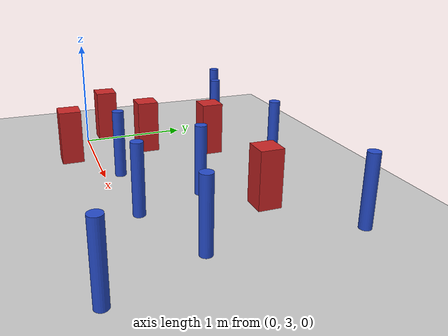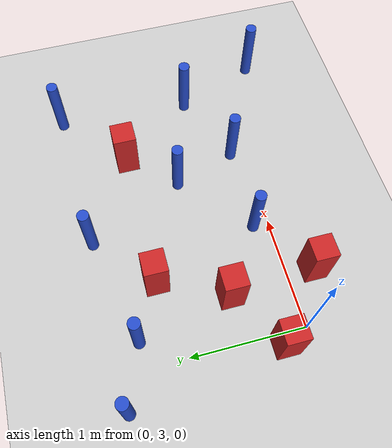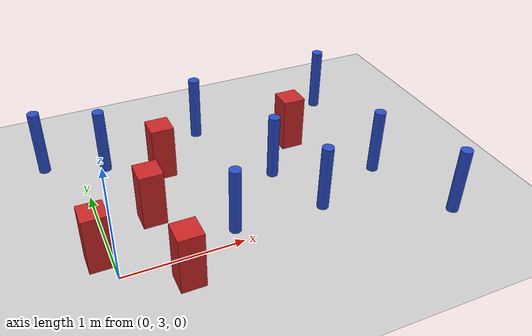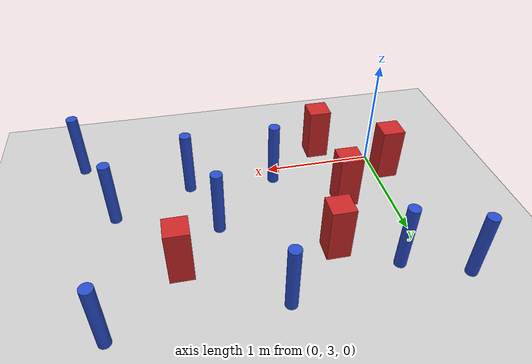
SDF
<sdf version="1.6">
 <world name="default">
  <model name="ground_plane">
   <static>1</static>
   <link name="link">
    <collision name="collision">
     <geometry><plane><normal>0 0 1</normal><size>100 100</size></plane></geometry>
     <surface><friction><ode><mu>100</mu><mu2>50</mu2></ode></friction></surface>
    </collision>
    <visual name="visual">
     <cast_shadows>0</cast_shadows>
     <geometry><plane><normal>0 0 1</normal><size>100 100</size></plane></geometry>
     <material>
      <ambient>1.0 1.0 1.0 1.0</ambient>
      <diffuse>0.8 0.8 0.8 1.0</diffuse>
      <specular>0.01 0.01 0.01 1.000000</specular>
     </material>
    </visual>
   </link>
  </model>
  <model name="pole_obstacle16">
   <static>true</static>
   <pose>0.983162321599 3.14520407418 2.88873142074e-08 -9.90536689802e-09 4.6021994899e-07 -1.2096599496e-07</pose>
   <link name="link">
    <pose>0 0 0.3 0 -0 0</pose>
    <inertial>
     <mass>1</mass>
     <inertia><ixx>0.145833</ixx><ixy>0</ixy><ixz>0</ixz><iyy>0.145833</iyy><iyz>0</iyz><izz>0.125</izz></inertia>
    </inertial>
    <collision name="collision">
     <geometry><cylinder><radius>0.05</radius><length>.6</length></cylinder></geometry>
    </collision>
    <visual name="visual">
     <geometry><cylinder><radius>0.05</radius><length>.6</length></cylinder></geometry>
     <material>
      <script><name>Gazebo/Blue</name><uri>file://media/materials/scripts/gazebo.material</uri></script>
     </material>
    </visual>
   </link>
  </model>
  <model name="pole_obstacle40">
   <static>true</static>
   <pose>0.223186373433 4.3616640634 2.88873142074e-08 -9.90536689491e-09 4.60219948997e-07 -1.20965994955e-07</pose>
   <link name="link">
    <pose>0 0 0.3 0 -0 0</pose>
    <inertial>
     <mass>1</mass>
     <inertia><ixx>0.145833</ixx><ixy>0</ixy><ixz>0</ixz><iyy>0.145833</iyy><iyz>0</iyz><izz>0.125</izz></inertia>
    </inertial>
    <collision name="collision">
     <geometry><cylinder><radius>0.05</radius><length>.6</length></cylinder></geometry>
    </collision>
    <visual name="visual">
     <geometry><cylinder><radius>0.05</radius><length>.6</length></cylinder></geometry>
     <material>
      <script><name>Gazebo/Blue</name><uri>file://media/materials/scripts/gazebo.material</uri></script>
     </material>
    </visual>
   </link>
  </model>
  <model name="pole_obstacle52">
   <static>true</static>
   <pose>1.76650891803 3.12129963516 2.88873142074e-08 -9.90536689791e-09 4.6021994899e-07 -1.20965994959e-07</pose>
   <link name="link">
    <pose>0 0 0.3 0 -0 0</pose>
    <inertial>
     <mass>1</mass>
     <inertia><ixx>0.145833</ixx><ixy>0</ixy><ixz>0</ixz><iyy>0.145833</iyy><iyz>0</iyz><izz>0.125</izz></inertia>
    </inertial>
    <collision name="collision">
     <geometry><cylinder><radius>0.05</radius><length>.6</length></cylinder></geometry>
    </collision>
    <visual name="visual">
     <geometry><cylinder><radius>0.05</radius><length>.6</length></cylinder></geometry>
     <material>
      <script><name>Gazebo/Blue</name><uri>file://media/materials/scripts/gazebo.material</uri></script>
     </material>
    </visual>
   </link>
  </model>
  <model name="pole_obstacle73">
   <static>true</static>
   <pose>-0.290637246795 4.55423607331 2.88873142074e-08 -9.90536689618e-09 4.60219948994e-07 -1.20965994956e-07</pose>
   <link name="link">
    <pose>0 0 0.3 0 -0 0</pose>
    <inertial>
     <mass>1</mass>
     <inertia><ixx>0.145833</ixx><ixy>0</ixy><ixz>0</ixz><iyy>0.145833</iyy><iyz>0</iyz><izz>0.125</izz></inertia>
    </inertial>
    <collision name="collision">
     <geometry><cylinder><radius>0.05</radius><length>.6</length></cylinder></geometry>
    </collision>
    <visual name="visual">
     <geometry><cylinder><radius>0.05</radius><length>.6</length></cylinder></geometry>
     <material>
      <script><name>Gazebo/Blue</name><uri>file://media/materials/scripts/gazebo.material</uri></script>
     </material>
    </visual>
   </link>
  </model>
  <model name="square_post_obstacle69">
   <static>true</static>
   <pose>1.93498473462 4.09867230985 8.22691968438e-08 7.22125133819e-06 -7.54495500217e-07 2.29674213826e-05</pose>
   <link name="link">
    <pose>0 0 0.25 0 -0 0</pose>
    <inertial>
     <mass>100</mass>
     <inertia>
      <ixx>0.166667</ixx>
      <ixy>0</ixy>
      <ixz>0</ixz>
      <iyy>0.166667</iyy>
      <iyz>0</iyz>
      <izz>0.166667</izz>
     </inertia>
    </inertial>
    <collision name="collision"><geometry><box><size>.2 .2 .5</size></box></geometry></collision>
    <visual name="visual">
     <geometry><box><size>.2 .2 .5</size></box></geometry>
     <material>
      <script><name>Gazebo/Red</name><uri>file://media/materials/scripts/gazebo.material</uri></script>
     </material>
    </visual>
   </link>
  </model>
  <model name="pole_obstacle90">
   <static>true</static>
   <pose>2.74068062391 2.65973264462 2.88873142074e-08 -9.90536690232e-09 4.6021994898e-07 -1.20965994968e-07</pose>
   <link name="link">
    <pose>0 0 0.3 0 -0 0</pose>
    <inertial>
     <mass>1</mass>
     <inertia><ixx>0.145833</ixx><ixy>0</ixy><ixz>0</ixz><iyy>0.145833</iyy><iyz>0</iyz><izz>0.125</izz></inertia>
    </inertial>
    <collision name="collision">
     <geometry><cylinder><radius>0.05</radius><length>.6</length></cylinder></geometry>
    </collision>
    <visual name="visual">
     <geometry><cylinder><radius>0.05</radius><length>.6</length></cylinder></geometry>
     <material>
      <script><name>Gazebo/Blue</name><uri>file://media/materials/scripts/gazebo.material</uri></script>
     </material>
    </visual>
   </link>
  </model>
  <model name="square_post_obstacle107">
   <static>true</static>
   <pose>0.466710206263 2.77962973129 8.22691968438e-08 7.22125133819e-06 -7.54495500217e-07 2.29674213826e-05</pose>
   <link name="link">
    <pose>0 0 0.25 0 -0 0</pose>
    <inertial>
     <mass>100</mass>
     <inertia>
      <ixx>0.166667</ixx>
      <ixy>0</ixy>
      <ixz>0</ixz>
      <iyy>0.166667</iyy>
      <iyz>0</iyz>
      <izz>0.166667</izz>
     </inertia>
    </inertial>
    <collision name="collision"><geometry><box><size>.2 .2 .5</size></box></geometry></collision>
    <visual name="visual">
     <geometry><box><size>.2 .2 .5</size></box></geometry>
     <material>
      <script><name>Gazebo/Red</name><uri>file://media/materials/scripts/gazebo.material</uri></script>
     </material>
    </visual>
   </link>
  </model>
  <model name="pole_obstacle122">
   <static>true</static>
   <pose>2.44371661772 3.40573432583 2.88873142074e-08 -9.90536690232e-09 4.6021994898e-07 -1.20965994968e-07</pose>
   <link name="link">
    <pose>0 0 0.3 0 -0 0</pose>
    <inertial>
     <mass>1</mass>
     <inertia><ixx>0.145833</ixx><ixy>0</ixy><ixz>0</ixz><iyy>0.145833</iyy><iyz>0</iyz><izz>0.125</izz></inertia>
    </inertial>
    <collision name="collision">
     <geometry><cylinder><radius>0.05</radius><length>.6</length></cylinder></geometry>
    </collision>
    <visual name="visual">
     <geometry><cylinder><radius>0.05</radius><length>.6</length></cylinder></geometry>
     <material>
      <script><name>Gazebo/Blue</name><uri>file://media/materials/scripts/gazebo.material</uri></script>
     </material>
    </visual>
   </link>
  </model>
  <model name="pole_obstacle130">
   <static>true</static>
   <pose>2.51026544646 4.62201940795 2.88873142074e-08 -9.90536689859e-09 4.60219948989e-07 -1.20965994961e-07</pose>
   <link name="link">
    <pose>0 0 0.3 0 -0 0</pose>
    <inertial>
     <mass>1</mass>
     <inertia><ixx>0.145833</ixx><ixy>0</ixy><ixz>0</ixz><iyy>0.145833</iyy><iyz>0</iyz><izz>0.125</izz></inertia>
    </inertial>
    <collision name="collision">
     <geometry><cylinder><radius>0.05</radius><length>.6</length></cylinder></geometry>
    </collision>
    <visual name="visual">
     <geometry><cylinder><radius>0.05</radius><length>.6</length></cylinder></geometry>
     <material>
      <script><name>Gazebo/Blue</name><uri>file://media/materials/scripts/gazebo.material</uri></script>
     </material>
    </visual>
   </link>
  </model>
  <model name="pole_obstacle153">
   <static>true</static>
   <pose>1.57483651848 3.69182474702 2.88873142074e-08 -9.90536689791e-09 4.6021994899e-07 -1.20965994959e-07</pose>
   <link name="link">
    <pose>0 0 0.3 0 -0 0</pose>
    <inertial>
     <mass>1</mass>
     <inertia><ixx>0.145833</ixx><ixy>0</ixy><ixz>0</ixz><iyy>0.145833</iyy><iyz>0</iyz><izz>0.125</izz></inertia>
    </inertial>
    <collision name="collision">
     <geometry><cylinder><radius>0.05</radius><length>.6</length></cylinder></geometry>
    </collision>
    <visual name="visual">
     <geometry><cylinder><radius>0.05</radius><length>.6</length></cylinder></geometry>
     <material>
      <script><name>Gazebo/Blue</name><uri>file://media/materials/scripts/gazebo.material</uri></script>
     </material>
    </visual>
   </link>
  </model>
  <model name="square_post_obstacle153">
   <static>true</static>
   <pose>-0.091797681498 3.22264916927 8.22691968438e-08 7.22125133819e-06 -7.54495500217e-07 2.29674213826e-05</pose>
   <link name="link">
    <pose>0 0 0.25 0 -0 0</pose>
    <inertial>
     <mass>100</mass>
     <inertia>
      <ixx>0.166667</ixx>
      <ixy>0</ixy>
      <ixz>0</ixz>
      <iyy>0.166667</iyy>
      <iyz>0</iyz>
      <izz>0.166667</izz>
     </inertia>
    </inertial>
    <collision name="collision"><geometry><box><size>.2 .2 .5</size></box></geometry></collision>
    <visual name="visual">
     <geometry><box><size>.2 .2 .5</size></box></geometry>
     <material>
      <script><name>Gazebo/Red</name><uri>file://media/materials/scripts/gazebo.material</uri></script>
     </material>
    </visual>
   </link>
  </model>
  <model name="square_post_obstacle158">
   <static>true</static>
   <pose>0.683829110132 4.11239577165 8.22691968438e-08 7.2212513382e-06 -7.54495500217e-07 2.29674213826e-05</pose>
   <link name="link">
    <pose>0 0 0.25 0 -0 0</pose>
    <inertial>
     <mass>100</mass>
     <inertia>
      <ixx>0.166667</ixx>
      <ixy>0</ixy>
      <ixz>0</ixz>
      <iyy>0.166667</iyy>
      <iyz>0</iyz>
      <izz>0.166667</izz>
     </inertia>
    </inertial>
    <collision name="collision"><geometry><box><size>.2 .2 .5</size></box></geometry></collision>
    <visual name="visual">
     <geometry><box><size>.2 .2 .5</size></box></geometry>
     <material>
      <script><name>Gazebo/Red</name><uri>file://media/materials/scripts/gazebo.material</uri></script>
     </material>
    </visual>
   </link>
  </model>
  <model name="square_post_obstacle160">
   <static>true</static>
   <pose>0.413211939052 3.53737971342 8.22691968438e-08 7.22125133819e-06 -7.54495500217e-07 2.29674213826e-05</pose>
   <link name="link">
    <pose>0 0 0.25 0 -0 0</pose>
    <inertial>
     <mass>100</mass>
     <inertia>
      <ixx>0.166667</ixx>
      <ixy>0</ixy>
      <ixz>0</ixz>
      <iyy>0.166667</iyy>
      <iyz>0</iyz>
      <izz>0.166667</izz>
     </inertia>
    </inertial>
    <collision name="collision"><geometry><box><size>.2 .2 .5</size></box></geometry></collision>
    <visual name="visual">
     <geometry><box><size>.2 .2 .5</size></box></geometry>
     <material>
      <script><name>Gazebo/Red</name><uri>file://media/materials/scripts/gazebo.material</uri></script>
     </material>
    </visual>
   </link>
  </model>
  <model name="pole_obstacle191">
   <static>true</static>
   <pose>1.1685619937 4.57035297304 2.88873142074e-08 -9.90536689852e-09 4.60219948989e-07 -1.2096599496e-07</pose>
   <link name="link">
    <pose>0 0 0.3 0 -0 0</pose>
    <inertial>
     <mass>1</mass>
     <inertia><ixx>0.145833</ixx><ixy>0</ixy><ixz>0</ixz><iyy>0.145833</iyy><iyz>0</iyz><izz>0.125</izz></inertia>
    </inertial>
    <collision name="collision">
     <geometry><cylinder><radius>0.05</radius><length>.6</length></cylinder></geometry>
    </collision>
    <visual name="visual">
     <geometry><cylinder><radius>0.05</radius><length>.6</length></cylinder></geometry>
     <material>
      <script><name>Gazebo/Blue</name><uri>file://media/materials/scripts/gazebo.material</uri></script>
     </material>
    </visual>
   </link>
  </model>
 </world>
</sdf>
